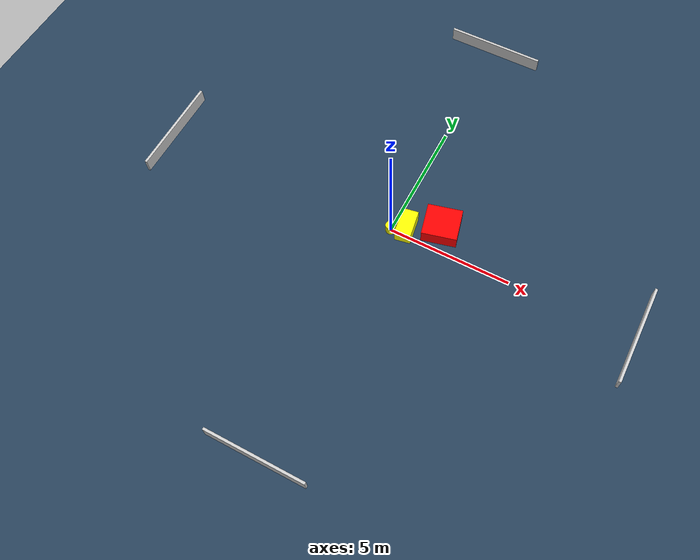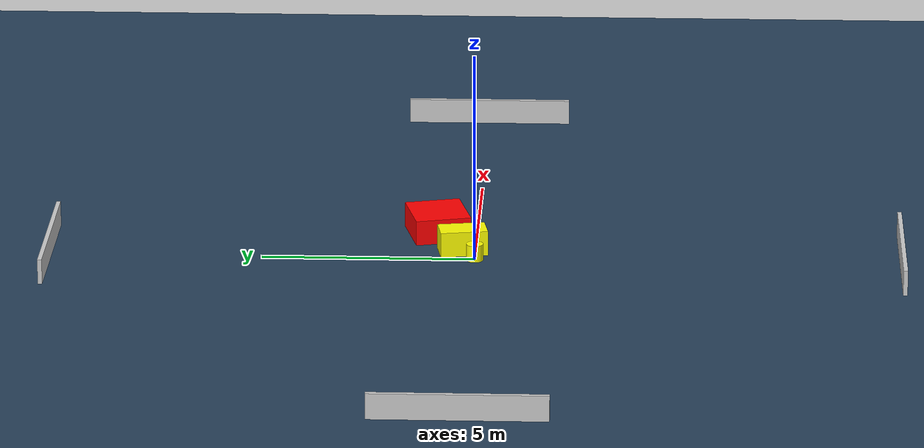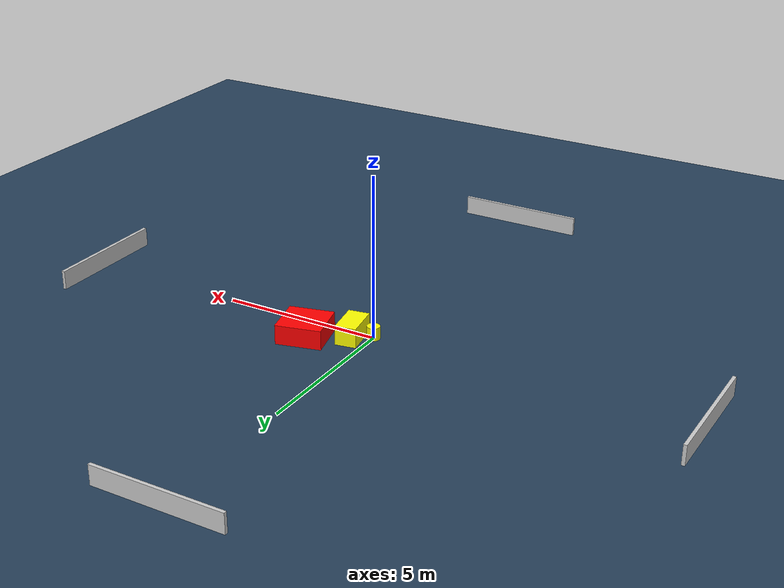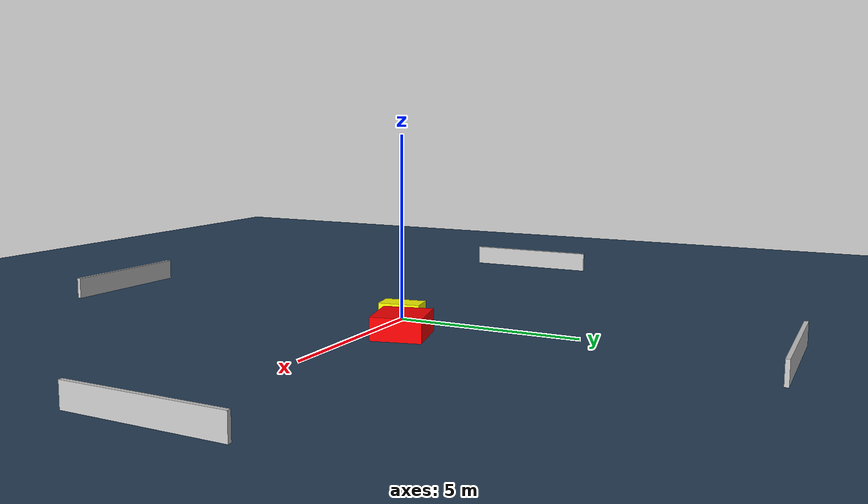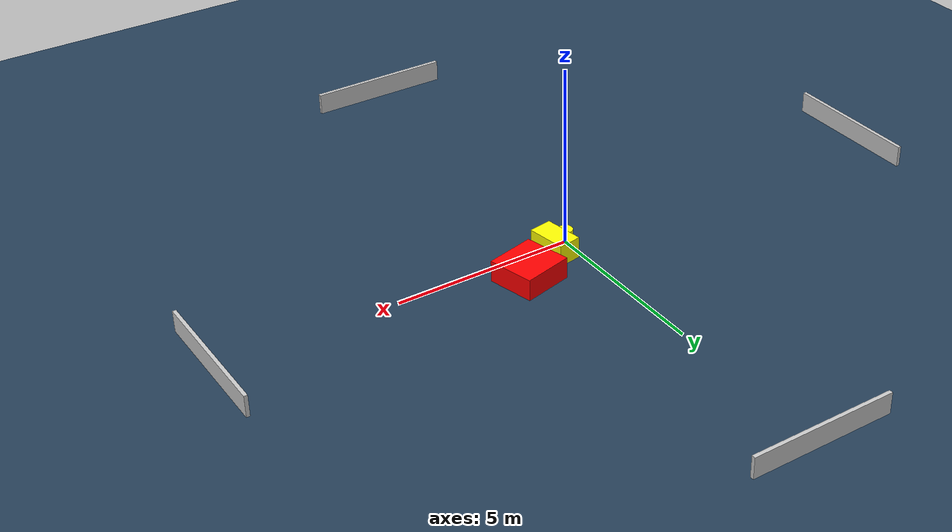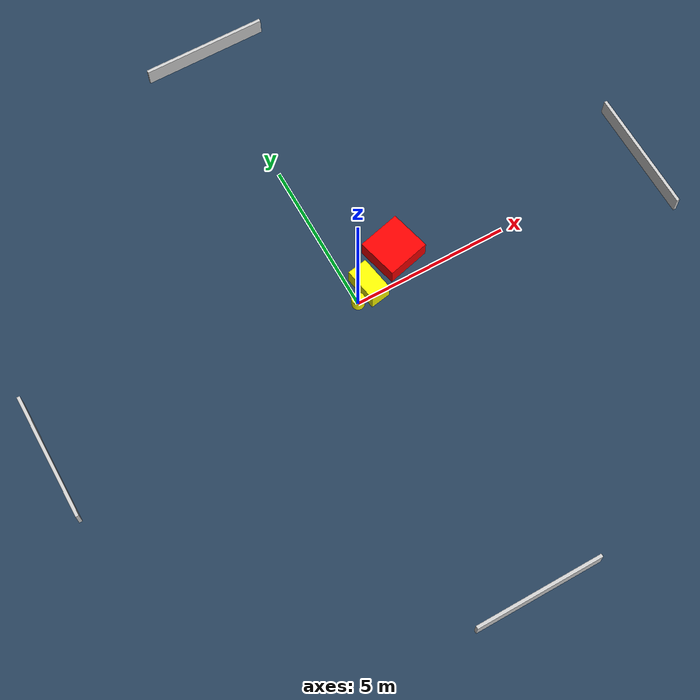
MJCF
<?xml version="1.0" ?>
<mujoco model="generated_environment">
  <option timestep="0.01" integrator="RK4" cone="elliptic"/>
  <default>
    <geom density="1"/>
  </default>
  <asset>
    <texture builtin="gradient" height="3072" name="skybox" rgb1="0.3 0.5 0.7" rgb2="0 0 0" type="skybox" width="512"/>
    <texture builtin="checker" height="300" name="groundplane" rgb1="0.2 0.3 0.4" rgb2="0.1 0.2 0.3" type="2d" width="300"/>
    <material name="groundplane" reflectance="0.2" texrepeat="5 5" texture="groundplane"/>
  </asset>
  <worldbody>
    <light dir="0 0 -1" directional="true" pos="0 0 1.5"/>
    <geom condim="3" friction="0.5 0.005 0.001" material="groundplane" name="floor" pos="0 0 0" size="0 0 0.05" type="plane"/>
    <body name="walls">
      <geom name="wall_1" condim="4" pos="-10.0 0.0 0.3" rgba="0.800000011920929 0.800000011920929 0.800000011920929 1.0" size="0.05 2.0 0.3" type="box"/>
      <geom name="wall_2" condim="4" pos="10.0 0.0 0.3" rgba="0.800000011920929 0.800000011920929 0.800000011920929 1.0" size="0.05 2.0 0.3" type="box"/>
      <geom name="wall_3" condim="4" pos="0.0 -10.0 0.3" rgba="0.800000011920929 0.800000011920929 0.800000011920929 1.0" size="2.0 0.05 0.3" type="box"/>
      <geom name="wall_4" condim="4" pos="0.0 10.0 0.3" rgba="0.800000011920929 0.800000011920929 0.800000011920929 1.0" size="2.0 0.05 0.3" type="box"/>
    </body>
    <body name="robot">
      <joint name="joint_x" type="slide" pos="0 0 0" axis="1 0 0"/>
      <joint name="joint_y" type="slide" pos="0 0 0" axis="0 1 0"/>
      <geom name="robot" type="cylinder" pos="0.0 0.0 0.2" size="0.2 0.2 0.0" mass="5.0" friction="1.0 0.005 0.0001" condim="4" rgba="1.0 1.0 0.0 1.0"/>
    </body>
    <body name="obstacle_1_movable">
      <geom name="obstacle_1_movable" condim="4" pos="0.533834443511103 0.3026679566616985 0.3" euler="0 0 99.70620371078607" friction="0.0 0.005 0.001" rgba="1.0 1.0 0.0 1.0" size="0.559160461308836 0.32283205215645494 0.3" type="box" mass="0.1"/>
      <joint type="free"/>
    </body>
    <body name="obstacle_2_static">
      <geom name="obstacle_2_static" condim="4" pos="1.747581655808847 0.9382387988329495 0.3" euler="0 0 13.962894805029213" friction="0.0 0.005 0.001" rgba="1.0 0.0 0.0 1.0" size="0.6950506286932987 0.6601498279996558 0.3" type="box"/>
    </body>
  </worldbody>
  <actuator>
    <motor name="actuator_x" joint="joint_x" gear="1" ctrlrange="-1 1"/>
    <motor name="actuator_y" joint="joint_y" gear="1" ctrlrange="-1 1"/>
  </actuator>
</mujoco>
